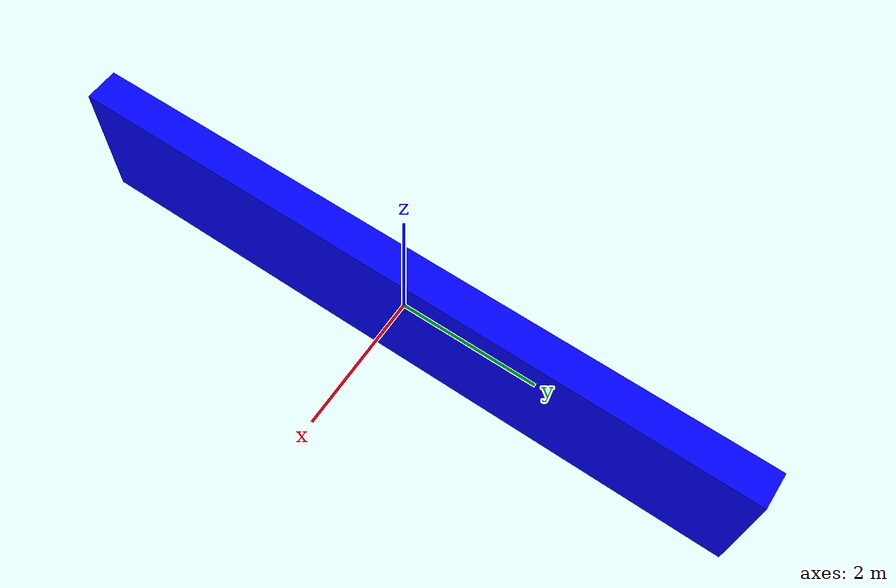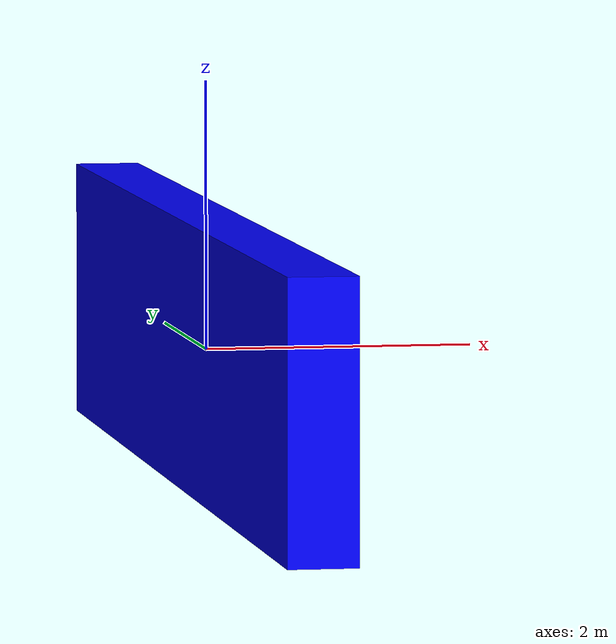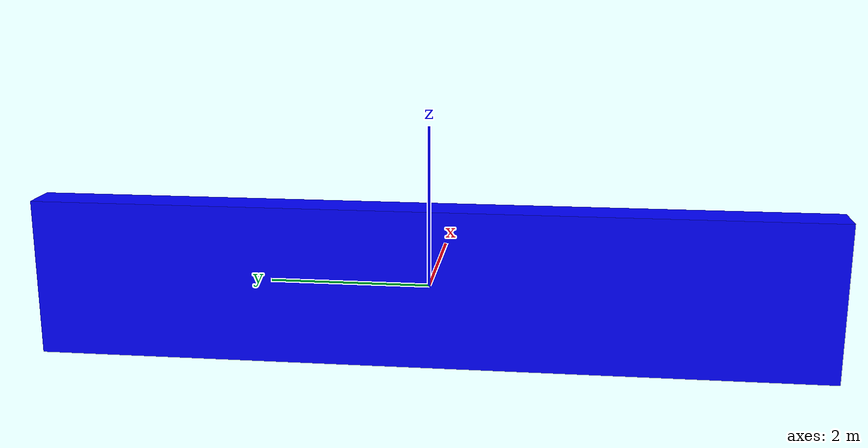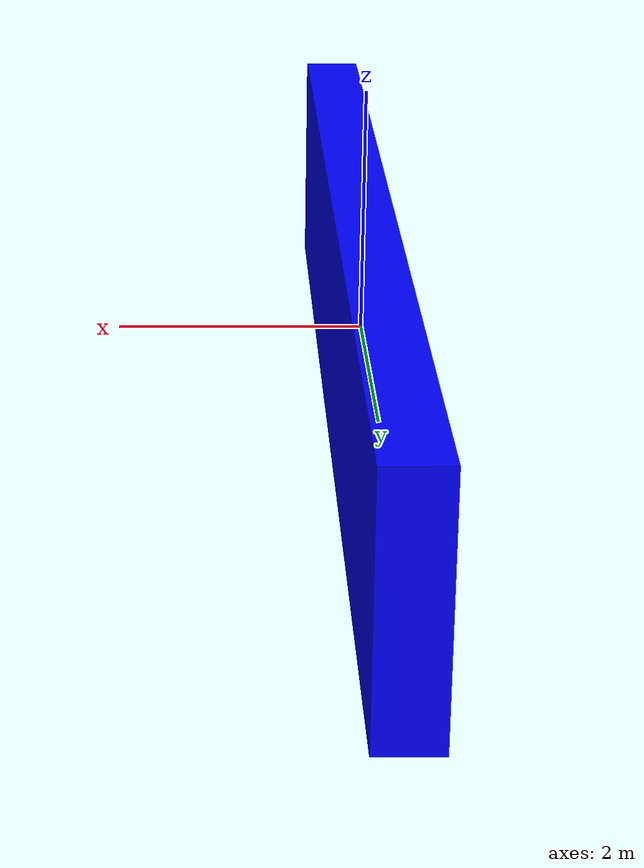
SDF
<?xml version='1.0'?>
<sdf version='1.9'>
    <model name='wall'>
        <static>true</static>
        <link name='box'>
            <pose />
            <inertial> <!--inertial
                    properties of the link mass, inertia matix-->
                <mass>1.14395</mass>
                <inertia>
                    <ixx>9.532917</ixx>
                    <ixy>0</ixy>
                    <ixz>0</ixz>
                    <iyy>0.023832</iyy>
                    <iyz>0</iyz>
                    <izz>9.556749</izz>
                </inertia>
            </inertial>
            <visual name='visual'>
                <geometry>
                    <box>
                        <size>0.5 10.0 2.0</size>
                    </box>
                </geometry>
                <!--let's
                    add color to our link-->
                <material>
                    <ambient>0.0 0.0 1.0 1</ambient>
                    <diffuse>0.0 0.0 1.0 1</diffuse>
                    <specular>0.0 0.0 1.0 1</specular>
                </material>
            </visual>
            <collision name='collision'> <!--todo:
                    describe why we need the collision-->
                <geometry>
                    <box>
                        <size>0.5 10.0 2.0</size>
                    </box>
                </geometry>
            </collision>
            <sensor name='sensor_contact' type='contact'>
                <contact>
                    <collision>collision</collision>
                </contact>
            </sensor>
        </link>
        <plugin filename="gz-sim-touchplugin-system"
            name="gz::sim::systems::TouchPlugin">
            <target>vehicle_blue</target>
            <namespace>wall</namespace>
            <time>0.1</time>
            <enabled>true</enabled>
        </plugin>
    </model>
</sdf>
